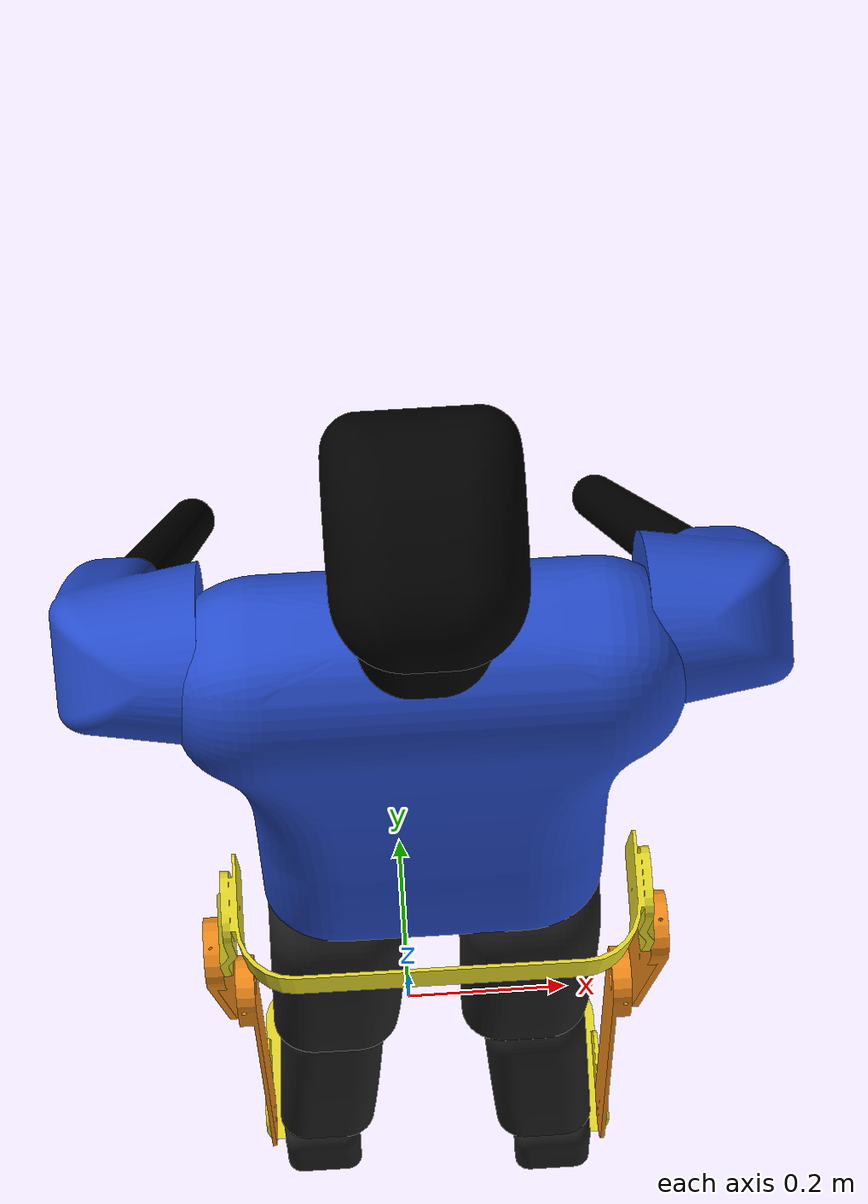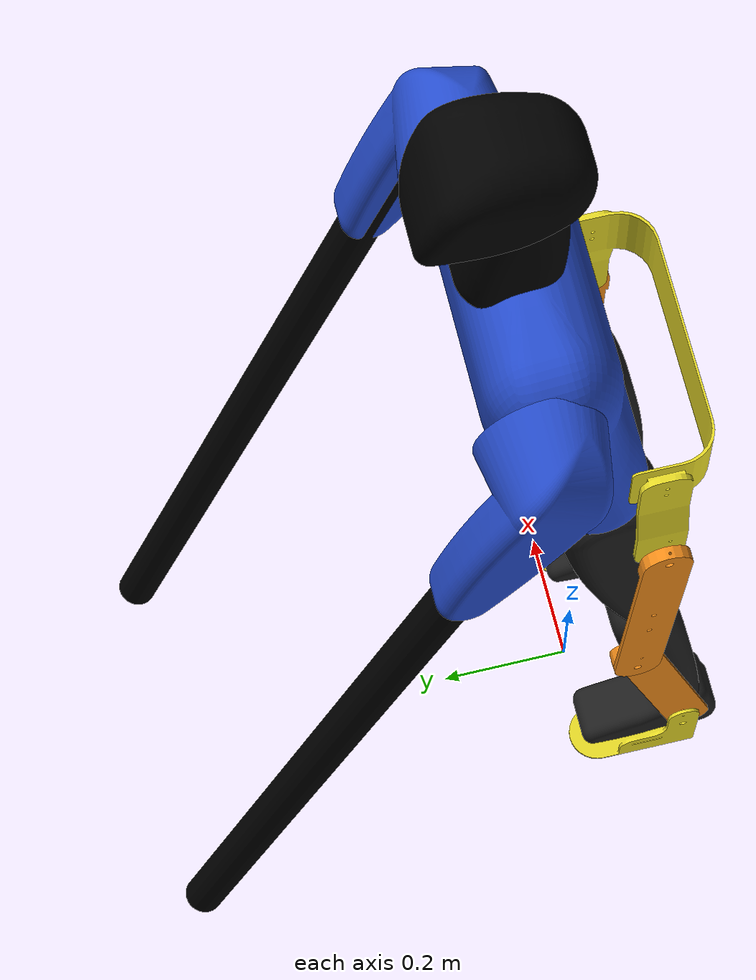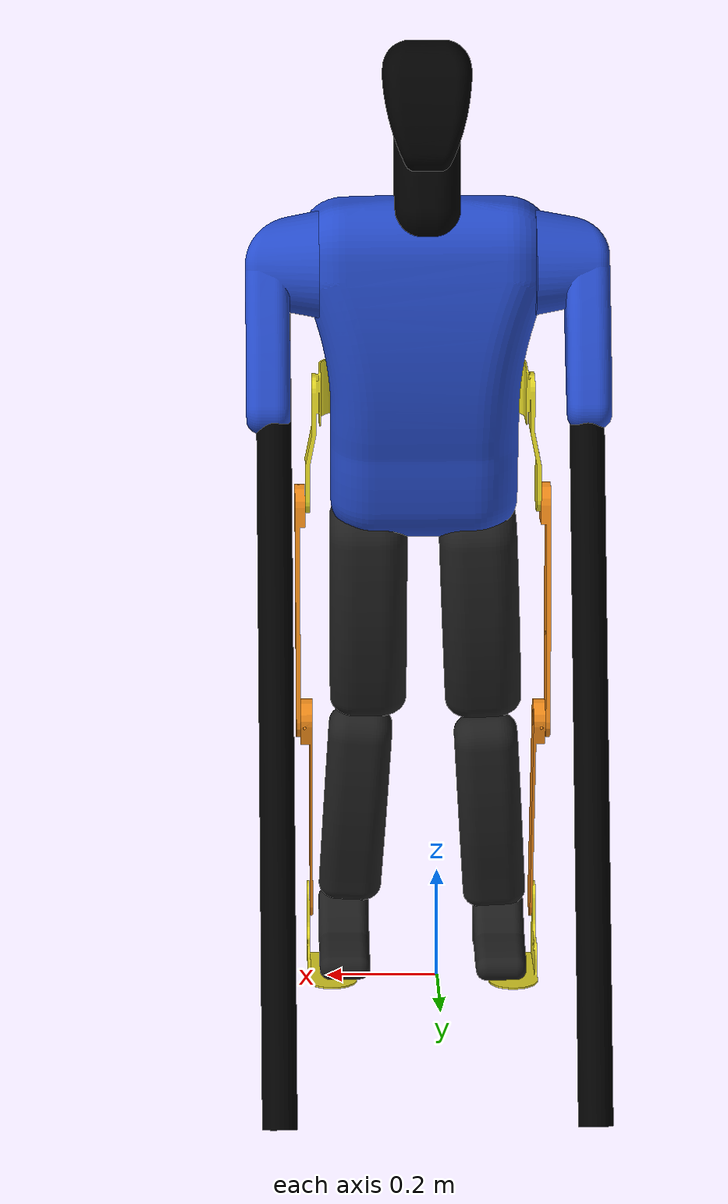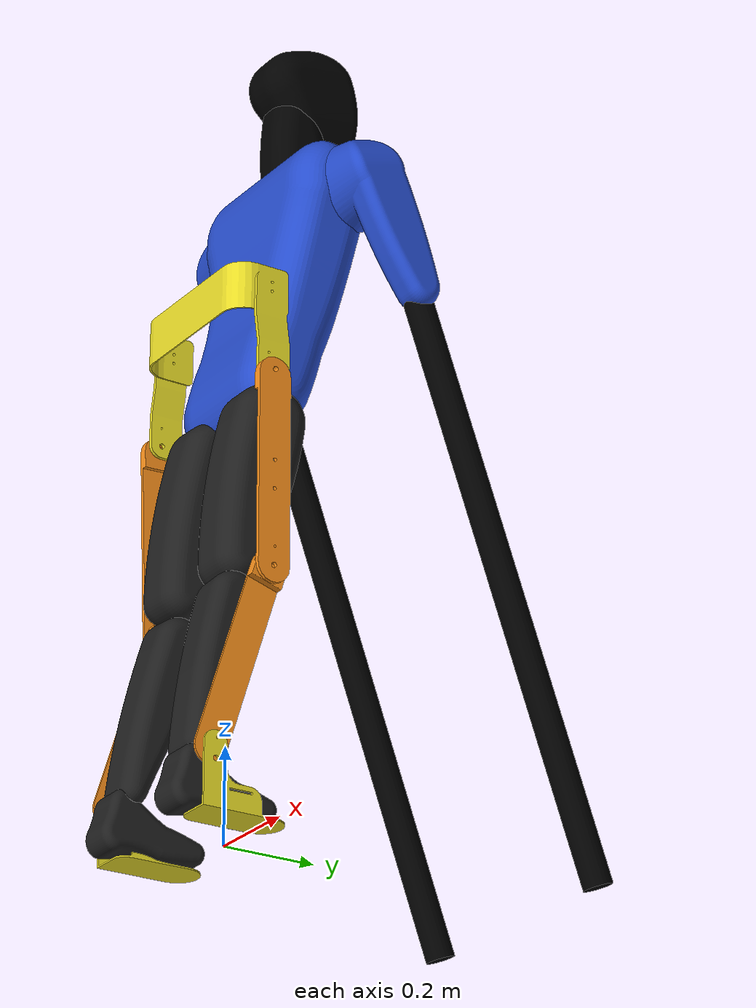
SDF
<?xml version='1.0'?>
<sdf version='1.7'>
  <model name='lle'>
    <link name='odom'>
      <inertial>
        <pose>0.02 0.5 0 0 -0 0</pose>
        <mass>58.0673</mass>
        <inertia>
          <ixx>3.12933</ixx>
          <ixy>0</ixy>
          <ixz>0</ixz>
          <iyy>2.77083</iyy>
          <iyz>0</iyz>
          <izz>0.858306</izz>
        </inertia>
      </inertial>
      <self_collide>0</self_collide>
      <enable_wind>0</enable_wind>
      <kinematic>0</kinematic>
      <pose>0 0 0 -0.01 0 0</pose>
      <gravity>1</gravity>
      <visual name='odom_fixed_joint_lump__human_head_visual_2'>
        <pose>0.1 0.1 1.22 1.4 0 3.1415</pose>
        <geometry>
          <mesh>
            <scale>0.0009 0.0009 0.0009</scale>
            <uri>/home/milad/catkin_ws/src/lle_human/lle_description/meshes/Head.STL</uri>
          </mesh>
        </geometry>
        <material>
          <shader type='pixel'>
            <normal_map>__default__</normal_map>
          </shader>
          <script>
            <name>ModelPreview_6::odom::odom_fixed_joint_lump__human_head_visual_2_MATERIAL_</name>
            <uri>__default__</uri>
          </script>
          <ambient>0 0 0 1</ambient>
          <diffuse>0 0 0 1</diffuse>
          <specular>0 0 0 1</specular>
          <emissive>0 0 0 1</emissive>
        </material>
        <transparency>0</transparency>
        <cast_shadows>1</cast_shadows>
      </visual>
      <visual name='odom_fixed_joint_lump__human_right_upper_arm_visual_6'>
        <pose>0.045 0.3 1.1 1.9 -0 0</pose>
        <geometry>
          <mesh>
            <scale>0.001 0.0009 0.00075</scale>
            <uri>/home/milad/catkin_ws/src/lle_human/lle_description/meshes/UpperArm.STL</uri>
          </mesh>
        </geometry>
        <material>
          <script>
            <name>Gazebo/Blue</name>
            <uri>file://media/materials/scripts/gazebo.material</uri>
          </script>
          <shader type='pixel'>
            <normal_map>__default__</normal_map>
          </shader>
          <ambient>0 0 1 1</ambient>
          <diffuse>0 0 1 1</diffuse>
          <specular>0.1 0.1 0.1 1</specular>
          <emissive>0 0 0 1</emissive>
        </material>
        <transparency>0</transparency>
        <cast_shadows>1</cast_shadows>
      </visual>
      <visual name='odom_fixed_joint_lump__human_neck_visual_1'>
        <pose>0.079 0.05 1.28 1.57 0 3.1415</pose>
        <geometry>
          <mesh>
            <scale>0.0009 0.0009 0.0009</scale>
            <uri>/home/milad/catkin_ws/src/lle_human/lle_description/meshes/neck.STL</uri>
          </mesh>
        </geometry>
        <material>
          <shader type='pixel'>
            <normal_map>__default__</normal_map>
          </shader>
          <script>
            <name>ModelPreview_6::odom::odom_fixed_joint_lump__human_neck_visual_1_MATERIAL_</name>
            <uri>__default__</uri>
          </script>
          <ambient>0 0 0 1</ambient>
          <diffuse>0 0 0 1</diffuse>
          <specular>0 0 0 1</specular>
          <emissive>0 0 0 1</emissive>
        </material>
        <transparency>0</transparency>
        <cast_shadows>1</cast_shadows>
      </visual>
      <visual name='odom_fixed_joint_lump__cane_right_visual_7'>
        <pose>0.29 0.42 0.62 0.35 -0 0</pose>
        <geometry>
          <cylinder>
            <length>1.4</length>
            <radius>0.03</radius>
          </cylinder>
        </geometry>
        <material>
          <shader type='pixel'>
            <normal_map>__default__</normal_map>
          </shader>
          <script>
            <name>ModelPreview_6::odom::odom_fixed_joint_lump__cane_right_visual_7_MATERIAL_</name>
            <uri>__default__</uri>
          </script>
          <ambient>0 0 0 1</ambient>
          <diffuse>0 0 0 1</diffuse>
          <specular>0 0 0 1</specular>
          <emissive>0 0 0 1</emissive>
        </material>
        <transparency>0</transparency>
        <cast_shadows>1</cast_shadows>
      </visual>
      <visual name='odom_fixed_joint_lump__human_chest_visual'>
        <pose>0.27 -0.08 0.845 1.7 -0 3.1415</pose>
        <geometry>
          <mesh>
            <scale>0.001 0.0009 0.00075</scale>
            <uri>/home/milad/catkin_ws/src/lle_human/lle_description/meshes/Chest.STL</uri>
          </mesh>
        </geometry>
        <material>
          <script>
            <name>Gazebo/Blue</name>
            <uri>file://media/materials/scripts/gazebo.material</uri>
          </script>
          <shader type='pixel'>
            <normal_map>__default__</normal_map>
          </shader>
          <ambient>0 0 1 1</ambient>
          <diffuse>0 0 1 1</diffuse>
          <specular>0.1 0.1 0.1 1</specular>
          <emissive>0 0 0 1</emissive>
        </material>
        <transparency>0</transparency>
        <cast_shadows>1</cast_shadows>
      </visual>
      <visual name='odom_fixed_joint_lump__cane_left_visual_5'>
        <pose>-0.25 0.42 0.62 0.35 -0 0</pose>
        <geometry>
          <cylinder>
            <length>1.4</length>
            <radius>0.03</radius>
          </cylinder>
        </geometry>
        <material>
          <shader type='pixel'>
            <normal_map>__default__</normal_map>
          </shader>
          <script>
            <name>ModelPreview_6::odom::odom_fixed_joint_lump__cane_left_visual_5_MATERIAL_</name>
            <uri>__default__</uri>
          </script>
          <ambient>0 0 0 1</ambient>
          <diffuse>0 0 0 1</diffuse>
          <specular>0 0 0 1</specular>
          <emissive>0 0 0 1</emissive>
        </material>
        <transparency>0</transparency>
        <cast_shadows>1</cast_shadows>
      </visual>
      <visual name='odom_fixed_joint_lump__human_left_upper_arm_visual_4'>
        <pose>0 0.22 1.064 1 -0 3.1415</pose>
        <geometry>
          <mesh>
            <scale>0.001 0.0009 0.00075</scale>
            <uri>/home/milad/catkin_ws/src/lle_human/lle_description/meshes/UpperArm.STL</uri>
          </mesh>
        </geometry>
        <material>
          <script>
            <name>Gazebo/Blue</name>
            <uri>file://media/materials/scripts/gazebo.material</uri>
          </script>
          <shader type='pixel'>
            <normal_map>__default__</normal_map>
          </shader>
          <ambient>0 0 1 1</ambient>
          <diffuse>0 0 1 1</diffuse>
          <specular>0.1 0.1 0.1 1</specular>
          <emissive>0 0 0 1</emissive>
        </material>
        <transparency>0</transparency>
        <cast_shadows>1</cast_shadows>
      </visual>
      <visual name='odom_fixed_joint_lump__base_link_visual_3'>
        <pose>0.193 -0.32 0.845 0 -0 3.14</pose>
        <geometry>
          <mesh>
            <scale>1 1 1</scale>
            <uri>/home/milad/catkin_ws/src/lle_human/lle_description/meshes/base_link.STL</uri>
          </mesh>
        </geometry>
        <material>
          <script>
            <name>Gazebo/Yellow</name>
            <uri>file://media/materials/scripts/gazebo.material</uri>
          </script>
          <shader type='pixel'>
            <normal_map>__default__</normal_map>
          </shader>
          <ambient>1 1 0 1</ambient>
          <diffuse>1 1 0 1</diffuse>
          <emissive>0 0 0 1</emissive>
        </material>
        <transparency>0</transparency>
        <cast_shadows>1</cast_shadows>
      </visual>
      <collision name='odom_fixed_joint_lump__human_head_collision_2'>
        <laser_retro>0</laser_retro>
        <max_contacts>10</max_contacts>
        <pose>0.1 0.1 1.22 1.4 0 3.1415</pose>
        <geometry>
          <mesh>
            <uri>/home/milad/catkin_ws/src/lle_human/lle_description/meshes/Head.STL</uri>
            <scale>0.0009 0.0009 0.0009</scale>
          </mesh>
        </geometry>
        <surface>
          <friction>
            <ode>
              <mu>1</mu>
              <mu2>1</mu2>
              <fdir1>0 0 0</fdir1>
              <slip1>0</slip1>
              <slip2>0</slip2>
            </ode>
            <torsional>
              <coefficient>1</coefficient>
              <patch_radius>0</patch_radius>
              <surface_radius>0</surface_radius>
              <use_patch_radius>1</use_patch_radius>
              <ode>
                <slip>0</slip>
              </ode>
            </torsional>
          </friction>
          <bounce>
            <restitution_coefficient>0</restitution_coefficient>
            <threshold>1e+06</threshold>
          </bounce>
          <contact>
            <collide_without_contact>0</collide_without_contact>
            <collide_without_contact_bitmask>1</collide_without_contact_bitmask>
            <collide_bitmask>1</collide_bitmask>
            <ode>
              <soft_cfm>0</soft_cfm>
              <soft_erp>0.2</soft_erp>
              <kp>1e+13</kp>
              <kd>1</kd>
              <max_vel>0.01</max_vel>
              <min_depth>0</min_depth>
            </ode>
            <bullet>
              <split_impulse>1</split_impulse>
              <split_impulse_penetration_threshold>-0.01</split_impulse_penetration_threshold>
              <soft_cfm>0</soft_cfm>
              <soft_erp>0.2</soft_erp>
              <kp>1e+13</kp>
              <kd>1</kd>
            </bullet>
          </contact>
        </surface>
      </collision>
      <collision name='odom_fixed_joint_lump__base_link_collision_3'>
        <laser_retro>0</laser_retro>
        <max_contacts>10</max_contacts>
        <pose>0.193 -0.26 0.845 0 -0 3.14</pose>
        <geometry>
          <mesh>
            <uri>/home/milad/catkin_ws/src/lle_human/lle_description/meshes/base_link.STL</uri>
            <scale>1 1 1</scale>
          </mesh>
        </geometry>
        <surface>
          <friction>
            <ode>
              <mu>0.9</mu>
              <mu2>0.9</mu2>
              <fdir1>0 0 0</fdir1>
              <slip1>0</slip1>
              <slip2>0</slip2>
            </ode>
            <torsional>
              <coefficient>1</coefficient>
              <patch_radius>0</patch_radius>
              <surface_radius>0</surface_radius>
              <use_patch_radius>1</use_patch_radius>
              <ode>
                <slip>0</slip>
              </ode>
            </torsional>
          </friction>
          <bounce>
            <restitution_coefficient>0</restitution_coefficient>
            <threshold>1e+06</threshold>
          </bounce>
          <contact>
            <collide_without_contact>0</collide_without_contact>
            <collide_without_contact_bitmask>1</collide_without_contact_bitmask>
            <collide_bitmask>1</collide_bitmask>
            <ode>
              <soft_cfm>0</soft_cfm>
              <soft_erp>0.2</soft_erp>
              <kp>6e+06</kp>
              <kd>1e+07</kd>
              <max_vel>0.01</max_vel>
              <min_depth>0</min_depth>
            </ode>
            <bullet>
              <split_impulse>1</split_impulse>
              <split_impulse_penetration_threshold>-0.01</split_impulse_penetration_threshold>
              <soft_cfm>0</soft_cfm>
              <soft_erp>0.2</soft_erp>
              <kp>6e+06</kp>
              <kd>1e+07</kd>
            </bullet>
          </contact>
        </surface>
      </collision>
      <collision name='odom_fixed_joint_lump__cane_right_collision_7'>
        <laser_retro>0</laser_retro>
        <max_contacts>10</max_contacts>
        <pose>0.29 0.42 0.62 0.35 -0 0</pose>
        <geometry>
          <cylinder>
            <radius>0.03</radius>
            <length>1.4</length>
          </cylinder>
        </geometry>
        <surface>
          <friction>
            <ode>
              <mu>1</mu>
              <mu2>1</mu2>
              <fdir1>0 0 0</fdir1>
              <slip1>0</slip1>
              <slip2>0</slip2>
            </ode>
            <torsional>
              <coefficient>1</coefficient>
              <patch_radius>0</patch_radius>
              <surface_radius>0</surface_radius>
              <use_patch_radius>1</use_patch_radius>
              <ode>
                <slip>0</slip>
              </ode>
            </torsional>
          </friction>
          <bounce>
            <restitution_coefficient>0</restitution_coefficient>
            <threshold>1e+06</threshold>
          </bounce>
          <contact>
            <collide_without_contact>0</collide_without_contact>
            <collide_without_contact_bitmask>1</collide_without_contact_bitmask>
            <collide_bitmask>1</collide_bitmask>
            <ode>
              <soft_cfm>0</soft_cfm>
              <soft_erp>0.2</soft_erp>
              <kp>1e+13</kp>
              <kd>1</kd>
              <max_vel>0.01</max_vel>
              <min_depth>0</min_depth>
            </ode>
            <bullet>
              <split_impulse>1</split_impulse>
              <split_impulse_penetration_threshold>-0.01</split_impulse_penetration_threshold>
              <soft_cfm>0</soft_cfm>
              <soft_erp>0.2</soft_erp>
              <kp>1e+13</kp>
              <kd>1</kd>
            </bullet>
          </contact>
        </surface>
      </collision>
      <collision name='odom_fixed_joint_lump__human_chest_collision'>
        <laser_retro>0</laser_retro>
        <max_contacts>10</max_contacts>
        <pose>0.27 -0.08 0.845 1.7 -0 3.1415</pose>
        <geometry>
          <mesh>
            <uri>/home/milad/catkin_ws/src/lle_human/lle_description/meshes/Chest.STL</uri>
            <scale>0.001 0.0009 0.00075</scale>
          </mesh>
        </geometry>
        <surface>
          <friction>
            <ode>
              <mu>0.9</mu>
              <mu2>0.9</mu2>
              <fdir1>0 0 0</fdir1>
              <slip1>0</slip1>
              <slip2>0</slip2>
            </ode>
            <torsional>
              <coefficient>1</coefficient>
              <patch_radius>0</patch_radius>
              <surface_radius>0</surface_radius>
              <use_patch_radius>1</use_patch_radius>
              <ode>
                <slip>0</slip>
              </ode>
            </torsional>
          </friction>
          <bounce>
            <restitution_coefficient>0</restitution_coefficient>
            <threshold>1e+06</threshold>
          </bounce>
          <contact>
            <collide_without_contact>0</collide_without_contact>
            <collide_without_contact_bitmask>1</collide_without_contact_bitmask>
            <collide_bitmask>1</collide_bitmask>
            <ode>
              <soft_cfm>0</soft_cfm>
              <soft_erp>0.2</soft_erp>
              <kp>6e+06</kp>
              <kd>1e+07</kd>
              <max_vel>0.01</max_vel>
              <min_depth>0</min_depth>
            </ode>
            <bullet>
              <split_impulse>1</split_impulse>
              <split_impulse_penetration_threshold>-0.01</split_impulse_penetration_threshold>
              <soft_cfm>0</soft_cfm>
              <soft_erp>0.2</soft_erp>
              <kp>6e+06</kp>
              <kd>1e+07</kd>
            </bullet>
          </contact>
        </surface>
      </collision>
      <collision name='odom_fixed_joint_lump__human_left_upper_arm_collision_4'>
        <laser_retro>0</laser_retro>
        <max_contacts>10</max_contacts>
        <pose>0 0.22 1.064 1 -0 3.1415</pose>
        <geometry>
          <mesh>
            <uri>/home/milad/catkin_ws/src/lle_human/lle_description/meshes/UpperArm.STL</uri>
            <scale>0.001 0.0009 0.00075</scale>
          </mesh>
        </geometry>
        <surface>
          <friction>
            <ode>
              <mu>0.9</mu>
              <mu2>0.9</mu2>
              <fdir1>0 0 0</fdir1>
              <slip1>0</slip1>
              <slip2>0</slip2>
            </ode>
            <torsional>
              <coefficient>1</coefficient>
              <patch_radius>0</patch_radius>
              <surface_radius>0</surface_radius>
              <use_patch_radius>1</use_patch_radius>
              <ode>
                <slip>0</slip>
              </ode>
            </torsional>
          </friction>
          <bounce>
            <restitution_coefficient>0</restitution_coefficient>
            <threshold>1e+06</threshold>
          </bounce>
          <contact>
            <collide_without_contact>0</collide_without_contact>
            <collide_without_contact_bitmask>1</collide_without_contact_bitmask>
            <collide_bitmask>1</collide_bitmask>
            <ode>
              <soft_cfm>0</soft_cfm>
              <soft_erp>0.2</soft_erp>
              <kp>6e+06</kp>
              <kd>1e+07</kd>
              <max_vel>0.01</max_vel>
              <min_depth>0</min_depth>
            </ode>
            <bullet>
              <split_impulse>1</split_impulse>
              <split_impulse_penetration_threshold>-0.01</split_impulse_penetration_threshold>
              <soft_cfm>0</soft_cfm>
              <soft_erp>0.2</soft_erp>
              <kp>6e+06</kp>
              <kd>1e+07</kd>
            </bullet>
          </contact>
        </surface>
      </collision>
      <collision name='odom_fixed_joint_lump__human_right_upper_arm_collision_6'>
        <laser_retro>0</laser_retro>
        <max_contacts>10</max_contacts>
        <pose>0.045 0.3 1.1 1.9 -0 0</pose>
        <geometry>
          <mesh>
            <uri>/home/milad/catkin_ws/src/lle_human/lle_description/meshes/UpperArm.STL</uri>
            <scale>0.001 0.0009 0.00075</scale>
          </mesh>
        </geometry>
        <surface>
          <friction>
            <ode>
              <mu>0.9</mu>
              <mu2>0.9</mu2>
              <fdir1>0 0 0</fdir1>
              <slip1>0</slip1>
              <slip2>0</slip2>
            </ode>
            <torsional>
              <coefficient>1</coefficient>
              <patch_radius>0</patch_radius>
              <surface_radius>0</surface_radius>
              <use_patch_radius>1</use_patch_radius>
              <ode>
                <slip>0</slip>
              </ode>
            </torsional>
          </friction>
          <bounce>
            <restitution_coefficient>0</restitution_coefficient>
            <threshold>1e+06</threshold>
          </bounce>
          <contact>
            <collide_without_contact>0</collide_without_contact>
            <collide_without_contact_bitmask>1</collide_without_contact_bitmask>
            <collide_bitmask>1</collide_bitmask>
            <ode>
              <soft_cfm>0</soft_cfm>
              <soft_erp>0.2</soft_erp>
              <kp>6e+06</kp>
              <kd>1e+07</kd>
              <max_vel>0.01</max_vel>
              <min_depth>0</min_depth>
            </ode>
            <bullet>
              <split_impulse>1</split_impulse>
              <split_impulse_penetration_threshold>-0.01</split_impulse_penetration_threshold>
              <soft_cfm>0</soft_cfm>
              <soft_erp>0.2</soft_erp>
              <kp>6e+06</kp>
              <kd>1e+07</kd>
            </bullet>
          </contact>
        </surface>
      </collision>
      <collision name='odom_fixed_joint_lump__cane_left_collision_5'>
        <laser_retro>0</laser_retro>
        <max_contacts>10</max_contacts>
        <pose>-0.25 0.42 0.62 0.35 -0 0</pose>
        <geometry>
          <cylinder>
            <radius>0.03</radius>
            <length>1.4</length>
          </cylinder>
        </geometry>
        <surface>
          <friction>
            <ode>
              <mu>1</mu>
              <mu2>1</mu2>
              <fdir1>0 0 0</fdir1>
              <slip1>0</slip1>
              <slip2>0</slip2>
            </ode>
            <torsional>
              <coefficient>1</coefficient>
              <patch_radius>0</patch_radius>
              <surface_radius>0</surface_radius>
              <use_patch_radius>1</use_patch_radius>
              <ode>
                <slip>0</slip>
              </ode>
            </torsional>
          </friction>
          <bounce>
            <restitution_coefficient>0</restitution_coefficient>
            <threshold>1e+06</threshold>
          </bounce>
          <contact>
            <collide_without_contact>0</collide_without_contact>
            <collide_without_contact_bitmask>1</collide_without_contact_bitmask>
            <collide_bitmask>1</collide_bitmask>
            <ode>
              <soft_cfm>0</soft_cfm>
              <soft_erp>0.2</soft_erp>
              <kp>1e+13</kp>
              <kd>1</kd>
              <max_vel>0.01</max_vel>
              <min_depth>0</min_depth>
            </ode>
            <bullet>
              <split_impulse>1</split_impulse>
              <split_impulse_penetration_threshold>-0.01</split_impulse_penetration_threshold>
              <soft_cfm>0</soft_cfm>
              <soft_erp>0.2</soft_erp>
              <kp>1e+13</kp>
              <kd>1</kd>
            </bullet>
          </contact>
        </surface>
      </collision>
      <collision name='odom_fixed_joint_lump__human_neck_collision_1'>
        <laser_retro>0</laser_retro>
        <max_contacts>10</max_contacts>
        <pose>0.079 0.05 1.28 1.57 0 3.1415</pose>
        <geometry>
          <mesh>
            <uri>/home/milad/catkin_ws/src/lle_human/lle_description/meshes/neck.STL</uri>
            <scale>0.0009 0.0009 0.0009</scale>
          </mesh>
        </geometry>
        <surface>
          <friction>
            <ode>
              <mu>1</mu>
              <mu2>1</mu2>
              <fdir1>0 0 0</fdir1>
              <slip1>0</slip1>
              <slip2>0</slip2>
            </ode>
            <torsional>
              <coefficient>1</coefficient>
              <patch_radius>0</patch_radius>
              <surface_radius>0</surface_radius>
              <use_patch_radius>1</use_patch_radius>
              <ode>
                <slip>0</slip>
              </ode>
            </torsional>
          </friction>
          <bounce>
            <restitution_coefficient>0</restitution_coefficient>
            <threshold>1e+06</threshold>
          </bounce>
          <contact>
            <collide_without_contact>0</collide_without_contact>
            <collide_without_contact_bitmask>1</collide_without_contact_bitmask>
            <collide_bitmask>1</collide_bitmask>
            <ode>
              <soft_cfm>0</soft_cfm>
              <soft_erp>0.2</soft_erp>
              <kp>1e+13</kp>
              <kd>1</kd>
              <max_vel>0.01</max_vel>
              <min_depth>0</min_depth>
            </ode>
            <bullet>
              <split_impulse>1</split_impulse>
              <split_impulse_penetration_threshold>-0.01</split_impulse_penetration_threshold>
              <soft_cfm>0</soft_cfm>
              <soft_erp>0.2</soft_erp>
              <kp>1e+13</kp>
              <kd>1</kd>
            </bullet>
          </contact>
        </surface>
      </collision>
    </link>
    <link name='left_femur'>
      <pose>-0.26 0 0.885 0 -0 0</pose>
      <inertial>
        <pose>0.05 0 0 0 -0 0</pose>
        <mass>7.62439</mass>
        <inertia>
          <ixx>0.156056</ixx>
          <ixy>6.428e-05</ixy>
          <ixz>0</ixz>
          <iyy>0.155944</iyy>
          <iyz>0</iyz>
          <izz>0.0401214</izz>
        </inertia>
      </inertial>
      <self_collide>0</self_collide>
      <enable_wind>0</enable_wind>
      <kinematic>0</kinematic>
      <gravity>1</gravity>
      <visual name='left_femur_visual'>
        <pose>0.494 -0.05 0 -0.001591 1.57079 -3.14159</pose>
        <geometry>
          <mesh>
            <scale>1 1 1</scale>
            <uri>/home/milad/catkin_ws/src/lle_human/lle_description/meshes/left_femur.STL</uri>
          </mesh>
        </geometry>
        <material>
          <script>
            <name>Gazebo/Orange</name>
            <uri>file://media/materials/scripts/gazebo.material</uri>
          </script>
          <shader type='pixel'>
            <normal_map>__default__</normal_map>
          </shader>
          <ambient>1 0.509 0.047 1</ambient>
          <diffuse>1 0.509 0.047 1</diffuse>
          <specular>0.5 0.5 0.5 1</specular>
          <emissive>0 0 0 1</emissive>
        </material>
        <transparency>0</transparency>
        <cast_shadows>1</cast_shadows>
      </visual>
      <visual name='left_femur_fixed_joint_lump__human_tight_left_visual_1'>
        <pose>0.07 0.05 -0.42 1.5 0.04 0</pose>
        <geometry>
          <mesh>
            <scale>0.0009 0.0007 0.00075</scale>
            <uri>/home/milad/catkin_ws/src/lle_human/lle_description/meshes/Thigh.STL</uri>
          </mesh>
        </geometry>
        <material>
          <script>
            <name>Gazebo/Black</name>
            <uri>file://media/materials/scripts/gazebo.material</uri>
          </script>
          <shader type='pixel'>
            <normal_map>__default__</normal_map>
          </shader>
          <ambient>0 0 0 1</ambient>
          <diffuse>0 0 0 1</diffuse>
          <specular>0.1 0.1 0.1 1</specular>
          <emissive>0 0 0 1</emissive>
        </material>
        <transparency>0</transparency>
        <cast_shadows>1</cast_shadows>
      </visual>
      <collision name='left_femur_fixed_joint_lump__human_tight_left_collision_1'>
        <laser_retro>0</laser_retro>
        <max_contacts>10</max_contacts>
        <pose>0.07 0.05 -0.42 1.5 0.04 0</pose>
        <geometry>
          <mesh>
            <uri>/home/milad/catkin_ws/src/lle_human/lle_description/meshes/Thigh.STL</uri>
            <scale>0.0009 0.0007 0.00075</scale>
          </mesh>
        </geometry>
        <surface>
          <friction>
            <ode>
              <mu>1</mu>
              <mu2>1</mu2>
              <fdir1>0 0 0</fdir1>
              <slip1>0</slip1>
              <slip2>0</slip2>
            </ode>
            <torsional>
              <coefficient>1</coefficient>
              <patch_radius>0</patch_radius>
              <surface_radius>0</surface_radius>
              <use_patch_radius>1</use_patch_radius>
              <ode>
                <slip>0</slip>
              </ode>
            </torsional>
          </friction>
          <bounce>
            <restitution_coefficient>0</restitution_coefficient>
            <threshold>1e+06</threshold>
          </bounce>
          <contact>
            <collide_without_contact>0</collide_without_contact>
            <collide_without_contact_bitmask>1</collide_without_contact_bitmask>
            <collide_bitmask>1</collide_bitmask>
            <ode>
              <soft_cfm>0</soft_cfm>
              <soft_erp>0.2</soft_erp>
              <kp>1e+13</kp>
              <kd>1</kd>
              <max_vel>0.01</max_vel>
              <min_depth>0</min_depth>
            </ode>
            <bullet>
              <split_impulse>1</split_impulse>
              <split_impulse_penetration_threshold>-0.01</split_impulse_penetration_threshold>
              <soft_cfm>0</soft_cfm>
              <soft_erp>0.2</soft_erp>
              <kp>1e+13</kp>
              <kd>1</kd>
            </bullet>
          </contact>
        </surface>
      </collision>
      <collision name='left_femur_collision'>
        <laser_retro>0</laser_retro>
        <max_contacts>10</max_contacts>
        <pose>0.494 -0.05 0 -0.001593 1.57079 3.14159</pose>
        <geometry>
          <mesh>
            <uri>/home/milad/catkin_ws/src/lle_human/lle_description/meshes/left_femur.STL</uri>
            <scale>1 1 1</scale>
          </mesh>
        </geometry>
        <surface>
          <friction>
            <ode>
              <mu>0.9</mu>
              <mu2>0.9</mu2>
              <fdir1>0 0 0</fdir1>
              <slip1>0</slip1>
              <slip2>0</slip2>
            </ode>
            <torsional>
              <coefficient>1</coefficient>
              <patch_radius>0</patch_radius>
              <surface_radius>0</surface_radius>
              <use_patch_radius>1</use_patch_radius>
              <ode>
                <slip>0</slip>
              </ode>
            </torsional>
          </friction>
          <bounce>
            <restitution_coefficient>0</restitution_coefficient>
            <threshold>1e+06</threshold>
          </bounce>
          <contact>
            <collide_without_contact>0</collide_without_contact>
            <collide_without_contact_bitmask>1</collide_without_contact_bitmask>
            <collide_bitmask>1</collide_bitmask>
            <ode>
              <soft_cfm>0</soft_cfm>
              <soft_erp>0.2</soft_erp>
              <kp>6e+06</kp>
              <kd>1e+07</kd>
              <max_vel>0.01</max_vel>
              <min_depth>0</min_depth>
            </ode>
            <bullet>
              <split_impulse>1</split_impulse>
              <split_impulse_penetration_threshold>-0.01</split_impulse_penetration_threshold>
              <soft_cfm>0</soft_cfm>
              <soft_erp>0.2</soft_erp>
              <kp>6e+06</kp>
              <kd>1e+07</kd>
            </bullet>
          </contact>
        </surface>
      </collision>
    </link>
    <link name='left_foot'>
      <pose>-0.185 0.015 0.073 0 -0 0</pose>
      <inertial>
        <pose>0 0 0 0 -0 0</pose>
        <mass>1.18504</mass>
        <inertia>
          <ixx>0.00409867</ixx>
          <ixy>0</ixy>
          <ixz>5.773e-05</ixz>
          <iyy>0.00199778</iyy>
          <iyz>6.441e-05</iyz>
          <izz>0.00584294</izz>
        </inertia>
      </inertial>
      <sensor name='left_foot_contact_sensor' type='contact'>
        <always_on>1</always_on>
        <update_rate>120</update_rate>
        <contact>
          <collision>left_foot_collision</collision>
          <topic>__default_topic__</topic>
        </contact>
        <plugin name='gazebo_ros_bumper_controller' filename='libgazebo_ros_bumper.so'>
          <bumperTopicName>/left_foot_contact_sensor_state</bumperTopicName>
          <frameName>left_foot</frameName>
          <robotNamespace>/</robotNamespace>
        </plugin>
      </sensor>
      <self_collide>0</self_collide>
      <enable_wind>0</enable_wind>
      <kinematic>0</kinematic>
      <gravity>1</gravity>
      <visual name='left_foot_fixed_joint_lump__human_foot_left_visual_1'>
        <pose>0.17 -0.23 -0.092 1.57 0 3.1415</pose>
        <geometry>
          <mesh>
            <scale>0.0009 0.0009 0.00075</scale>
            <uri>/home/milad/catkin_ws/src/lle_human/lle_description/meshes/Foot.STL</uri>
          </mesh>
        </geometry>
        <material>
          <script>
            <name>Gazebo/Black</name>
            <uri>file://media/materials/scripts/gazebo.material</uri>
          </script>
          <shader type='pixel'>
            <normal_map>__default__</normal_map>
          </shader>
          <ambient>0 0 0 1</ambient>
          <diffuse>0 0 0 1</diffuse>
          <specular>0.1 0.1 0.1 1</specular>
          <emissive>0 0 0 1</emissive>
        </material>
        <transparency>0</transparency>
        <cast_shadows>1</cast_shadows>
      </visual>
      <visual name='left_foot_visual'>
        <pose>0 -0.16 0 1.57 -0 1.57</pose>
        <geometry>
          <mesh>
            <scale>1 1 1</scale>
            <uri>/home/milad/catkin_ws/src/lle_human/lle_description/meshes/left_foot.STL</uri>
          </mesh>
        </geometry>
        <material>
          <script>
            <name>Gazebo/Yellow</name>
            <uri>file://media/materials/scripts/gazebo.material</uri>
          </script>
          <shader type='pixel'>
            <normal_map>__default__</normal_map>
          </shader>
          <ambient>1 1 0 1</ambient>
          <diffuse>1 1 0 1</diffuse>
          <emissive>0 0 0 1</emissive>
        </material>
        <transparency>0</transparency>
        <cast_shadows>1</cast_shadows>
      </visual>
      <collision name='left_foot_collision'>
        <laser_retro>0</laser_retro>
        <max_contacts>10</max_contacts>
        <pose>0 -0.16 0 1.57 -0 1.57</pose>
        <geometry>
          <mesh>
            <uri>/home/milad/catkin_ws/src/lle_human/lle_description/meshes/left_foot.STL</uri>
            <scale>1 1 1</scale>
          </mesh>
        </geometry>
        <surface>
          <friction>
            <ode>
              <mu>0.9</mu>
              <mu2>0.9</mu2>
              <fdir1>0 0 0</fdir1>
              <slip1>0</slip1>
              <slip2>0</slip2>
            </ode>
            <torsional>
              <coefficient>1</coefficient>
              <patch_radius>0</patch_radius>
              <surface_radius>0</surface_radius>
              <use_patch_radius>1</use_patch_radius>
              <ode>
                <slip>0</slip>
              </ode>
            </torsional>
          </friction>
          <bounce>
            <restitution_coefficient>0</restitution_coefficient>
            <threshold>1e+06</threshold>
          </bounce>
          <contact>
            <collide_without_contact>0</collide_without_contact>
            <collide_without_contact_bitmask>1</collide_without_contact_bitmask>
            <collide_bitmask>1</collide_bitmask>
            <ode>
              <soft_cfm>0</soft_cfm>
              <soft_erp>0.2</soft_erp>
              <kp>6e+06</kp>
              <kd>1e+07</kd>
              <max_vel>0.01</max_vel>
              <min_depth>0</min_depth>
            </ode>
            <bullet>
              <split_impulse>1</split_impulse>
              <split_impulse_penetration_threshold>-0.01</split_impulse_penetration_threshold>
              <soft_cfm>0</soft_cfm>
              <soft_erp>0.2</soft_erp>
              <kp>6e+06</kp>
              <kd>1e+07</kd>
            </bullet>
          </contact>
        </surface>
      </collision>
      <collision name='left_foot_fixed_joint_lump__human_foot_left_collision_1'>
        <laser_retro>0</laser_retro>
        <max_contacts>10</max_contacts>
        <pose>0.17 -0.23 -0.092 1.57 0 3.1415</pose>
        <geometry>
          <mesh>
            <uri>/home/milad/catkin_ws/src/lle_human/lle_description/meshes/Foot.STL</uri>
            <scale>0.0009 0.0009 0.00075</scale>
          </mesh>
        </geometry>
        <surface>
          <friction>
            <ode>
              <mu>1</mu>
              <mu2>1</mu2>
              <fdir1>0 0 0</fdir1>
              <slip1>0</slip1>
              <slip2>0</slip2>
            </ode>
            <torsional>
              <coefficient>1</coefficient>
              <patch_radius>0</patch_radius>
              <surface_radius>0</surface_radius>
              <use_patch_radius>1</use_patch_radius>
              <ode>
                <slip>0</slip>
              </ode>
            </torsional>
          </friction>
          <bounce>
            <restitution_coefficient>0</restitution_coefficient>
            <threshold>1e+06</threshold>
          </bounce>
          <contact>
            <collide_without_contact>0</collide_without_contact>
            <collide_without_contact_bitmask>1</collide_without_contact_bitmask>
            <collide_bitmask>1</collide_bitmask>
            <ode>
              <soft_cfm>0</soft_cfm>
              <soft_erp>0.2</soft_erp>
              <kp>1e+13</kp>
              <kd>1</kd>
              <max_vel>0.01</max_vel>
              <min_depth>0</min_depth>
            </ode>
            <bullet>
              <split_impulse>1</split_impulse>
              <split_impulse_penetration_threshold>-0.01</split_impulse_penetration_threshold>
              <soft_cfm>0</soft_cfm>
              <soft_erp>0.2</soft_erp>
              <kp>1e+13</kp>
              <kd>1</kd>
            </bullet>
          </contact>
        </surface>
      </collision>
    </link>
    <link name='left_leg'>
      <pose>-0.185 0.015 0.476 0 -0 0</pose>
      <inertial>
        <pose>0 0 0 0 -0 0</pose>
        <mass>3.66625</mass>
        <inertia>
          <ixx>0.0500098</ixx>
          <ixy>6e-08</ixy>
          <ixz>0</ixz>
          <iyy>0.0478362</iyy>
          <iyz>0</iyz>
          <izz>0.00748695</izz>
        </inertia>
      </inertial>
      <self_collide>0</self_collide>
      <enable_wind>0</enable_wind>
      <kinematic>0</kinematic>
      <gravity>1</gravity>
      <visual name='left_leg_fixed_joint_lump__human_calf_left_visual_1'>
        <pose>-0.03 -0.15 -0.4 1.2 0.06 0</pose>
        <geometry>
          <mesh>
            <scale>0.0009 0.0008 0.00075</scale>
            <uri>/home/milad/catkin_ws/src/lle_human/lle_description/meshes/Calf.STL</uri>
          </mesh>
        </geometry>
        <material>
          <script>
            <name>Gazebo/Black</name>
            <uri>file://media/materials/scripts/gazebo.material</uri>
          </script>
          <shader type='pixel'>
            <normal_map>__default__</normal_map>
          </shader>
          <ambient>0 0 0 1</ambient>
          <diffuse>0 0 0 1</diffuse>
          <specular>0.1 0.1 0.1 1</specular>
          <emissive>0 0 0 1</emissive>
        </material>
        <transparency>0</transparency>
        <cast_shadows>1</cast_shadows>
      </visual>
      <visual name='left_leg_visual'>
        <pose>0 -0.05 0 1.57 -0.3 -1.57</pose>
        <geometry>
          <mesh>
            <scale>1 1 1</scale>
            <uri>/home/milad/catkin_ws/src/lle_human/lle_description/meshes/left_leg.STL</uri>
          </mesh>
        </geometry>
        <material>
          <script>
            <name>Gazebo/Orange</name>
            <uri>file://media/materials/scripts/gazebo.material</uri>
          </script>
          <shader type='pixel'>
            <normal_map>__default__</normal_map>
          </shader>
          <ambient>1 0.509 0.047 1</ambient>
          <diffuse>1 0.509 0.047 1</diffuse>
          <specular>0.5 0.5 0.5 1</specular>
          <emissive>0 0 0 1</emissive>
        </material>
        <transparency>0</transparency>
        <cast_shadows>1</cast_shadows>
      </visual>
      <collision name='left_leg_collision'>
        <laser_retro>0</laser_retro>
        <max_contacts>10</max_contacts>
        <pose>0 -0.05 0 1.57 -0.3 -1.57</pose>
        <geometry>
          <mesh>
            <uri>/home/milad/catkin_ws/src/lle_human/lle_description/meshes/left_leg.STL</uri>
            <scale>1 1 1</scale>
          </mesh>
        </geometry>
        <surface>
          <friction>
            <ode>
              <mu>0.9</mu>
              <mu2>0.9</mu2>
              <fdir1>0 0 0</fdir1>
              <slip1>0</slip1>
              <slip2>0</slip2>
            </ode>
            <torsional>
              <coefficient>1</coefficient>
              <patch_radius>0</patch_radius>
              <surface_radius>0</surface_radius>
              <use_patch_radius>1</use_patch_radius>
              <ode>
                <slip>0</slip>
              </ode>
            </torsional>
          </friction>
          <bounce>
            <restitution_coefficient>0</restitution_coefficient>
            <threshold>1e+06</threshold>
          </bounce>
          <contact>
            <collide_without_contact>0</collide_without_contact>
            <collide_without_contact_bitmask>1</collide_without_contact_bitmask>
            <collide_bitmask>1</collide_bitmask>
            <ode>
              <soft_cfm>0</soft_cfm>
              <soft_erp>0.2</soft_erp>
              <kp>6e+06</kp>
              <kd>1e+07</kd>
              <max_vel>0.01</max_vel>
              <min_depth>0</min_depth>
            </ode>
            <bullet>
              <split_impulse>1</split_impulse>
              <split_impulse_penetration_threshold>-0.01</split_impulse_penetration_threshold>
              <soft_cfm>0</soft_cfm>
              <soft_erp>0.2</soft_erp>
              <kp>6e+06</kp>
              <kd>1e+07</kd>
            </bullet>
          </contact>
        </surface>
      </collision>
      <collision name='left_leg_fixed_joint_lump__human_calf_left_collision_1'>
        <laser_retro>0</laser_retro>
        <max_contacts>10</max_contacts>
        <pose>-0.03 -0.15 -0.4 1.2 0.06 0</pose>
        <geometry>
          <mesh>
            <uri>/home/milad/catkin_ws/src/lle_human/lle_description/meshes/Calf.STL</uri>
            <scale>0.0009 0.0008 0.00075</scale>
          </mesh>
        </geometry>
        <surface>
          <friction>
            <ode>
              <mu>1</mu>
              <mu2>1</mu2>
              <fdir1>0 0 0</fdir1>
              <slip1>0</slip1>
              <slip2>0</slip2>
            </ode>
            <torsional>
              <coefficient>1</coefficient>
              <patch_radius>0</patch_radius>
              <surface_radius>0</surface_radius>
              <use_patch_radius>1</use_patch_radius>
              <ode>
                <slip>0</slip>
              </ode>
            </torsional>
          </friction>
          <bounce>
            <restitution_coefficient>0</restitution_coefficient>
            <threshold>1e+06</threshold>
          </bounce>
          <contact>
            <collide_without_contact>0</collide_without_contact>
            <collide_without_contact_bitmask>1</collide_without_contact_bitmask>
            <collide_bitmask>1</collide_bitmask>
            <ode>
              <soft_cfm>0</soft_cfm>
              <soft_erp>0.2</soft_erp>
              <kp>1e+13</kp>
              <kd>1</kd>
              <max_vel>0.01</max_vel>
              <min_depth>0</min_depth>
            </ode>
            <bullet>
              <split_impulse>1</split_impulse>
              <split_impulse_penetration_threshold>-0.01</split_impulse_penetration_threshold>
              <soft_cfm>0</soft_cfm>
              <soft_erp>0.2</soft_erp>
              <kp>1e+13</kp>
              <kd>1</kd>
            </bullet>
          </contact>
        </surface>
      </collision>
    </link>
    <link name='right_femur'>
      <pose>0.26 0 0.885 0 -0 0</pose>
      <inertial>
        <pose>0 0 0 0 -0 0</pose>
        <mass>7.62439</mass>
        <inertia>
          <ixx>0.156056</ixx>
          <ixy>6.428e-05</ixy>
          <ixz>0</ixz>
          <iyy>0.155944</iyy>
          <iyz>0</iyz>
          <izz>0.0401214</izz>
        </inertia>
      </inertial>
      <self_collide>0</self_collide>
      <enable_wind>0</enable_wind>
      <kinematic>0</kinematic>
      <gravity>1</gravity>
      <visual name='right_femur_visual'>
        <pose>-0.025 -0.05 0 -0.001591 1.57079 -3.14159</pose>
        <geometry>
          <mesh>
            <scale>1 1 1</scale>
            <uri>/home/milad/catkin_ws/src/lle_human/lle_description/meshes/right_femur.STL</uri>
          </mesh>
        </geometry>
        <material>
          <script>
            <name>Gazebo/Orange</name>
            <uri>file://media/materials/scripts/gazebo.material</uri>
          </script>
          <shader type='pixel'>
            <normal_map>__default__</normal_map>
          </shader>
          <ambient>1 0.509 0.047 1</ambient>
          <diffuse>1 0.509 0.047 1</diffuse>
          <specular>0.5 0.5 0.5 1</specular>
          <emissive>0 0 0 1</emissive>
        </material>
        <transparency>0</transparency>
        <cast_shadows>1</cast_shadows>
      </visual>
      <visual name='right_femur_fixed_joint_lump__human_tight_right_visual_1'>
        <pose>-0.24 0.05 -0.42 1.5 -0 0</pose>
        <geometry>
          <mesh>
            <scale>0.0009 0.0007 0.00075</scale>
            <uri>/home/milad/catkin_ws/src/lle_human/lle_description/meshes/Thigh.STL</uri>
          </mesh>
        </geometry>
        <material>
          <script>
            <name>Gazebo/Black</name>
            <uri>file://media/materials/scripts/gazebo.material</uri>
          </script>
          <shader type='pixel'>
            <normal_map>__default__</normal_map>
          </shader>
          <ambient>0 0 0 1</ambient>
          <diffuse>0 0 0 1</diffuse>
          <specular>0.1 0.1 0.1 1</specular>
          <emissive>0 0 0 1</emissive>
        </material>
        <transparency>0</transparency>
        <cast_shadows>1</cast_shadows>
      </visual>
      <collision name='right_femur_collision'>
        <laser_retro>0</laser_retro>
        <max_contacts>10</max_contacts>
        <pose>-0.025 -0.05 0 -0.001593 1.57079 3.14159</pose>
        <geometry>
          <mesh>
            <uri>/home/milad/catkin_ws/src/lle_human/lle_description/meshes/right_femur.STL</uri>
            <scale>1 1 1</scale>
          </mesh>
        </geometry>
        <surface>
          <friction>
            <ode>
              <mu>0.9</mu>
              <mu2>0.9</mu2>
              <fdir1>0 0 0</fdir1>
              <slip1>0</slip1>
              <slip2>0</slip2>
            </ode>
            <torsional>
              <coefficient>1</coefficient>
              <patch_radius>0</patch_radius>
              <surface_radius>0</surface_radius>
              <use_patch_radius>1</use_patch_radius>
              <ode>
                <slip>0</slip>
              </ode>
            </torsional>
          </friction>
          <bounce>
            <restitution_coefficient>0</restitution_coefficient>
            <threshold>1e+06</threshold>
          </bounce>
          <contact>
            <collide_without_contact>0</collide_without_contact>
            <collide_without_contact_bitmask>1</collide_without_contact_bitmask>
            <collide_bitmask>1</collide_bitmask>
            <ode>
              <soft_cfm>0</soft_cfm>
              <soft_erp>0.2</soft_erp>
              <kp>6e+06</kp>
              <kd>1e+07</kd>
              <max_vel>0.01</max_vel>
              <min_depth>0</min_depth>
            </ode>
            <bullet>
              <split_impulse>1</split_impulse>
              <split_impulse_penetration_threshold>-0.01</split_impulse_penetration_threshold>
              <soft_cfm>0</soft_cfm>
              <soft_erp>0.2</soft_erp>
              <kp>6e+06</kp>
              <kd>1e+07</kd>
            </bullet>
          </contact>
        </surface>
      </collision>
      <collision name='right_femur_fixed_joint_lump__human_tight_right_collision_1'>
        <laser_retro>0</laser_retro>
        <max_contacts>10</max_contacts>
        <pose>-0.24 0.05 -0.42 1.5 -0 0</pose>
        <geometry>
          <mesh>
            <uri>/home/milad/catkin_ws/src/lle_human/lle_description/meshes/Thigh.STL</uri>
            <scale>0.0009 0.0007 0.00075</scale>
          </mesh>
        </geometry>
        <surface>
          <friction>
            <ode>
              <mu>1</mu>
              <mu2>1</mu2>
              <fdir1>0 0 0</fdir1>
              <slip1>0</slip1>
              <slip2>0</slip2>
            </ode>
            <torsional>
              <coefficient>1</coefficient>
              <patch_radius>0</patch_radius>
              <surface_radius>0</surface_radius>
              <use_patch_radius>1</use_patch_radius>
              <ode>
                <slip>0</slip>
              </ode>
            </torsional>
          </friction>
          <bounce>
            <restitution_coefficient>0</restitution_coefficient>
            <threshold>1e+06</threshold>
          </bounce>
          <contact>
            <collide_without_contact>0</collide_without_contact>
            <collide_without_contact_bitmask>1</collide_without_contact_bitmask>
            <collide_bitmask>1</collide_bitmask>
            <ode>
              <soft_cfm>0</soft_cfm>
              <soft_erp>0.2</soft_erp>
              <kp>1e+13</kp>
              <kd>1</kd>
              <max_vel>0.01</max_vel>
              <min_depth>0</min_depth>
            </ode>
            <bullet>
              <split_impulse>1</split_impulse>
              <split_impulse_penetration_threshold>-0.01</split_impulse_penetration_threshold>
              <soft_cfm>0</soft_cfm>
              <soft_erp>0.2</soft_erp>
              <kp>1e+13</kp>
              <kd>1</kd>
            </bullet>
          </contact>
        </surface>
      </collision>
    </link>
    <link name='right_foot'>
      <pose>0.215 0 0.072 0 -0 0</pose>
      <inertial>
        <pose>0 0 0 0 -0 0</pose>
        <mass>1.18504</mass>
        <inertia>
          <ixx>0.00409867</ixx>
          <ixy>0</ixy>
          <ixz>5.773e-05</ixz>
          <iyy>0.00199778</iyy>
          <iyz>6.441e-05</iyz>
          <izz>0.00584294</izz>
        </inertia>
      </inertial>
      <sensor name='right_foot_contact_sensor' type='contact'>
        <always_on>1</always_on>
        <update_rate>120</update_rate>
        <contact>
          <collision>right_foot_collision</collision>
          <topic>__default_topic__</topic>
        </contact>
        <plugin name='gazebo_ros_bumper_controller_1' filename='libgazebo_ros_bumper.so'>
          <bumperTopicName>/right_foot_contact_sensor_state</bumperTopicName>
          <frameName>right_foot</frameName>
          <robotNamespace>/</robotNamespace>
        </plugin>
      </sensor>
      <self_collide>0</self_collide>
      <enable_wind>0</enable_wind>
      <kinematic>0</kinematic>
      <gravity>1</gravity>
      <visual name='right_foot_visual'>
        <pose>0.02 -0.16 0 1.57 0 -1.57</pose>
        <geometry>
          <mesh>
            <scale>1 1 1</scale>
            <uri>/home/milad/catkin_ws/src/lle_human/lle_description/meshes/right_foot.STL</uri>
          </mesh>
        </geometry>
        <material>
          <script>
            <name>Gazebo/Yellow</name>
            <uri>file://media/materials/scripts/gazebo.material</uri>
          </script>
          <shader type='pixel'>
            <normal_map>__default__</normal_map>
          </shader>
          <ambient>1 1 0 1</ambient>
          <diffuse>1 1 0 1</diffuse>
          <emissive>0 0 0 1</emissive>
        </material>
        <transparency>0</transparency>
        <cast_shadows>1</cast_shadows>
      </visual>
      <visual name='right_foot_fixed_joint_lump__human_foot_right_visual_1'>
        <pose>0.055 -0.23 -0.092 1.57 0 3.1415</pose>
        <geometry>
          <mesh>
            <scale>0.0009 0.0009 0.00075</scale>
            <uri>/home/milad/catkin_ws/src/lle_human/lle_description/meshes/Foot.STL</uri>
          </mesh>
        </geometry>
        <material>
          <script>
            <name>Gazebo/Black</name>
            <uri>file://media/materials/scripts/gazebo.material</uri>
          </script>
          <shader type='pixel'>
            <normal_map>__default__</normal_map>
          </shader>
          <ambient>0 0 0 1</ambient>
          <diffuse>0 0 0 1</diffuse>
          <specular>0.1 0.1 0.1 1</specular>
          <emissive>0 0 0 1</emissive>
        </material>
        <transparency>0</transparency>
        <cast_shadows>1</cast_shadows>
      </visual>
      <collision name='right_foot_fixed_joint_lump__human_foot_right_collision_1'>
        <laser_retro>0</laser_retro>
        <max_contacts>10</max_contacts>
        <pose>0.055 -0.23 -0.092 1.57 0 3.1415</pose>
        <geometry>
          <mesh>
            <uri>/home/milad/catkin_ws/src/lle_human/lle_description/meshes/Foot.STL</uri>
            <scale>0.0009 0.0009 0.00075</scale>
          </mesh>
        </geometry>
        <surface>
          <friction>
            <ode>
              <mu>1</mu>
              <mu2>1</mu2>
              <fdir1>0 0 0</fdir1>
              <slip1>0</slip1>
              <slip2>0</slip2>
            </ode>
            <torsional>
              <coefficient>1</coefficient>
              <patch_radius>0</patch_radius>
              <surface_radius>0</surface_radius>
              <use_patch_radius>1</use_patch_radius>
              <ode>
                <slip>0</slip>
              </ode>
            </torsional>
          </friction>
          <bounce>
            <restitution_coefficient>0</restitution_coefficient>
            <threshold>1e+06</threshold>
          </bounce>
          <contact>
            <collide_without_contact>0</collide_without_contact>
            <collide_without_contact_bitmask>1</collide_without_contact_bitmask>
            <collide_bitmask>1</collide_bitmask>
            <ode>
              <soft_cfm>0</soft_cfm>
              <soft_erp>0.2</soft_erp>
              <kp>1e+13</kp>
              <kd>1</kd>
              <max_vel>0.01</max_vel>
              <min_depth>0</min_depth>
            </ode>
            <bullet>
              <split_impulse>1</split_impulse>
              <split_impulse_penetration_threshold>-0.01</split_impulse_penetration_threshold>
              <soft_cfm>0</soft_cfm>
              <soft_erp>0.2</soft_erp>
              <kp>1e+13</kp>
              <kd>1</kd>
            </bullet>
          </contact>
        </surface>
      </collision>
      <collision name='right_foot_collision'>
        <laser_retro>0</laser_retro>
        <max_contacts>10</max_contacts>
        <pose>0.02 -0.16 0 1.57 0 -1.57</pose>
        <geometry>
          <mesh>
            <uri>/home/milad/catkin_ws/src/lle_human/lle_description/meshes/right_foot.STL</uri>
            <scale>1 1 1</scale>
          </mesh>
        </geometry>
        <surface>
          <friction>
            <ode>
              <mu>0.9</mu>
              <mu2>0.9</mu2>
              <fdir1>0 0 0</fdir1>
              <slip1>0</slip1>
              <slip2>0</slip2>
            </ode>
            <torsional>
              <coefficient>1</coefficient>
              <patch_radius>0</patch_radius>
              <surface_radius>0</surface_radius>
              <use_patch_radius>1</use_patch_radius>
              <ode>
                <slip>0</slip>
              </ode>
            </torsional>
          </friction>
          <bounce>
            <restitution_coefficient>0</restitution_coefficient>
            <threshold>1e+06</threshold>
          </bounce>
          <contact>
            <collide_without_contact>0</collide_without_contact>
            <collide_without_contact_bitmask>1</collide_without_contact_bitmask>
            <collide_bitmask>1</collide_bitmask>
            <ode>
              <soft_cfm>0</soft_cfm>
              <soft_erp>0.2</soft_erp>
              <kp>6e+06</kp>
              <kd>1e+07</kd>
              <max_vel>0.01</max_vel>
              <min_depth>0</min_depth>
            </ode>
            <bullet>
              <split_impulse>1</split_impulse>
              <split_impulse_penetration_threshold>-0.01</split_impulse_penetration_threshold>
              <soft_cfm>0</soft_cfm>
              <soft_erp>0.2</soft_erp>
              <kp>6e+06</kp>
              <kd>1e+07</kd>
            </bullet>
          </contact>
        </surface>
      </collision>
    </link>
    <link name='right_leg'>
      <pose>0.28 0 0.475 0 -0 0</pose>
      <inertial>
        <pose>0 0 0 0 -0 0</pose>
        <mass>3.66625</mass>
        <inertia>
          <ixx>0.0500098</ixx>
          <ixy>6e-08</ixy>
          <ixz>0</ixz>
          <iyy>0.0478362</iyy>
          <iyz>0</iyz>
          <izz>0.00748695</izz>
        </inertia>
      </inertial>
      <self_collide>0</self_collide>
      <enable_wind>0</enable_wind>
      <kinematic>0</kinematic>
      <gravity>1</gravity>
      <visual name='right_leg_fixed_joint_lump__human_calf_right_visual_1'>
        <pose>-0.225 -0.15 -0.4 1.2 -0.058 0</pose>
        <geometry>
          <mesh>
            <scale>0.0009 0.0008 0.00075</scale>
            <uri>/home/milad/catkin_ws/src/lle_human/lle_description/meshes/Calf.STL</uri>
          </mesh>
        </geometry>
        <material>
          <script>
            <name>Gazebo/Black</name>
            <uri>file://media/materials/scripts/gazebo.material</uri>
          </script>
          <shader type='pixel'>
            <normal_map>__default__</normal_map>
          </shader>
          <ambient>0 0 0 1</ambient>
          <diffuse>0 0 0 1</diffuse>
          <specular>0.1 0.1 0.1 1</specular>
          <emissive>0 0 0 1</emissive>
        </material>
        <transparency>0</transparency>
        <cast_shadows>1</cast_shadows>
      </visual>
      <visual name='right_leg_visual'>
        <pose>-0.045 -0.05 0 1.57 0.3 1.57</pose>
        <geometry>
          <mesh>
            <scale>1 1 1</scale>
            <uri>/home/milad/catkin_ws/src/lle_human/lle_description/meshes/right_leg.STL</uri>
          </mesh>
        </geometry>
        <material>
          <script>
            <name>Gazebo/Orange</name>
            <uri>file://media/materials/scripts/gazebo.material</uri>
          </script>
          <shader type='pixel'>
            <normal_map>__default__</normal_map>
          </shader>
          <ambient>1 0.509 0.047 1</ambient>
          <diffuse>1 0.509 0.047 1</diffuse>
          <specular>0.5 0.5 0.5 1</specular>
          <emissive>0 0 0 1</emissive>
        </material>
        <transparency>0</transparency>
        <cast_shadows>1</cast_shadows>
      </visual>
      <collision name='right_leg_fixed_joint_lump__human_calf_right_collision_1'>
        <laser_retro>0</laser_retro>
        <max_contacts>10</max_contacts>
        <pose>-0.225 -0.15 -0.4 1.2 -0.058 0</pose>
        <geometry>
          <mesh>
            <uri>/home/milad/catkin_ws/src/lle_human/lle_description/meshes/Calf.STL</uri>
            <scale>0.0009 0.0008 0.00075</scale>
          </mesh>
        </geometry>
        <surface>
          <friction>
            <ode>
              <mu>1</mu>
              <mu2>1</mu2>
              <fdir1>0 0 0</fdir1>
              <slip1>0</slip1>
              <slip2>0</slip2>
            </ode>
            <torsional>
              <coefficient>1</coefficient>
              <patch_radius>0</patch_radius>
              <surface_radius>0</surface_radius>
              <use_patch_radius>1</use_patch_radius>
              <ode>
                <slip>0</slip>
              </ode>
            </torsional>
          </friction>
          <bounce>
            <restitution_coefficient>0</restitution_coefficient>
            <threshold>1e+06</threshold>
          </bounce>
          <contact>
            <collide_without_contact>0</collide_without_contact>
            <collide_without_contact_bitmask>1</collide_without_contact_bitmask>
            <collide_bitmask>1</collide_bitmask>
            <ode>
              <soft_cfm>0</soft_cfm>
              <soft_erp>0.2</soft_erp>
              <kp>1e+13</kp>
              <kd>1</kd>
              <max_vel>0.01</max_vel>
              <min_depth>0</min_depth>
            </ode>
            <bullet>
              <split_impulse>1</split_impulse>
              <split_impulse_penetration_threshold>-0.01</split_impulse_penetration_threshold>
              <soft_cfm>0</soft_cfm>
              <soft_erp>0.2</soft_erp>
              <kp>1e+13</kp>
              <kd>1</kd>
            </bullet>
          </contact>
        </surface>
      </collision>
      <collision name='right_leg_collision'>
        <laser_retro>0</laser_retro>
        <max_contacts>10</max_contacts>
        <pose>-0.045 -0.05 0 1.57 0.3 1.57</pose>
        <geometry>
          <mesh>
            <uri>/home/milad/catkin_ws/src/lle_human/lle_description/meshes/right_leg.STL</uri>
            <scale>1 1 1</scale>
          </mesh>
        </geometry>
        <surface>
          <friction>
            <ode>
              <mu>0.9</mu>
              <mu2>0.9</mu2>
              <fdir1>0 0 0</fdir1>
              <slip1>0</slip1>
              <slip2>0</slip2>
            </ode>
            <torsional>
              <coefficient>1</coefficient>
              <patch_radius>0</patch_radius>
              <surface_radius>0</surface_radius>
              <use_patch_radius>1</use_patch_radius>
              <ode>
                <slip>0</slip>
              </ode>
            </torsional>
          </friction>
          <bounce>
            <restitution_coefficient>0</restitution_coefficient>
            <threshold>1e+06</threshold>
          </bounce>
          <contact>
            <collide_without_contact>0</collide_without_contact>
            <collide_without_contact_bitmask>1</collide_without_contact_bitmask>
            <collide_bitmask>1</collide_bitmask>
            <ode>
              <soft_cfm>0</soft_cfm>
              <soft_erp>0.2</soft_erp>
              <kp>6e+06</kp>
              <kd>1e+07</kd>
              <max_vel>0.01</max_vel>
              <min_depth>0</min_depth>
            </ode>
            <bullet>
              <split_impulse>1</split_impulse>
              <split_impulse_penetration_threshold>-0.01</split_impulse_penetration_threshold>
              <soft_cfm>0</soft_cfm>
              <soft_erp>0.2</soft_erp>
              <kp>6e+06</kp>
              <kd>1e+07</kd>
            </bullet>
          </contact>
        </surface>
      </collision>
    </link>
    <joint name='j_foot_l' type='revolute'>
      <parent>left_leg</parent>
      <child>left_foot</child>
      <pose>0 -0.17 0 0 -0 0</pose>
      <axis>
        <xyz>1 0 0</xyz>
        <limit>
          <lower>-0.5</lower>
          <upper>0.5</upper>
          <effort>10</effort>
          <velocity>0.5</velocity>
        </limit>
        <dynamics>
          <spring_reference>0</spring_reference>
          <spring_stiffness>0</spring_stiffness>
          <damping>0</damping>
          <friction>0</friction>
        </dynamics>
      </axis>
      <physics>
        <ode>
          <limit>
            <cfm>0</cfm>
            <erp>0.2</erp>
          </limit>
          <suspension>
            <cfm>0</cfm>
            <erp>0.2</erp>
          </suspension>
        </ode>
      </physics>
    </joint>
    <joint name='j_foot_r' type='revolute'>
      <parent>right_leg</parent>
      <child>right_foot</child>
      <pose>0 -0.17 0 0 -0 0</pose>
      <axis>
        <xyz>1 0 0</xyz>
        <limit>
          <lower>-0.5</lower>
          <upper>0.5</upper>
          <effort>10</effort>
          <velocity>0.5</velocity>
        </limit>
        <dynamics>
          <spring_reference>0</spring_reference>
          <spring_stiffness>0</spring_stiffness>
          <damping>0</damping>
          <friction>0</friction>
        </dynamics>
      </axis>
      <physics>
        <ode>
          <limit>
            <cfm>0</cfm>
            <erp>0.2</erp>
          </limit>
          <suspension>
            <cfm>0</cfm>
            <erp>0.2</erp>
          </suspension>
        </ode>
      </physics>
    </joint>
    <joint name='j_hip_l' type='revolute'>
      <parent>odom</parent>
      <child>left_femur</child>
      <pose>0.05 -0.05 0 0 -0 0</pose>
      <axis>
        <xyz>1 0 0</xyz>
        <limit>
          <lower>-1</lower>
          <upper>1</upper>
          <effort>50</effort>
          <velocity>0.5</velocity>
        </limit>
        <dynamics>
          <spring_reference>0</spring_reference>
          <spring_stiffness>0</spring_stiffness>
          <damping>0</damping>
          <friction>0</friction>
        </dynamics>
      </axis>
      <physics>
        <ode>
          <limit>
            <cfm>0</cfm>
            <erp>0.2</erp>
          </limit>
          <suspension>
            <cfm>0</cfm>
            <erp>0.2</erp>
          </suspension>
        </ode>
      </physics>
    </joint>
    <joint name='j_hip_r' type='revolute'>
      <parent>odom</parent>
      <child>right_femur</child>
      <pose>0 -0.05 0 0 -0 0</pose>
      <axis>
        <xyz>1 0 0</xyz>
        <limit>
          <lower>-1</lower>
          <upper>1</upper>
          <effort>50</effort>
          <velocity>0.5</velocity>
        </limit>
        <dynamics>
          <spring_reference>0</spring_reference>
          <spring_stiffness>0</spring_stiffness>
          <damping>0</damping>
          <friction>0</friction>
        </dynamics>
      </axis>
      <physics>
        <ode>
          <limit>
            <cfm>0</cfm>
            <erp>0.2</erp>
          </limit>
          <suspension>
            <cfm>0</cfm>
            <erp>0.2</erp>
          </suspension>
        </ode>
      </physics>
    </joint>
    <joint name='j_knee_l' type='revolute'>
      <parent>left_femur</parent>
      <child>left_leg</child>
      <pose>0 -0.05 0 0 -0 0</pose>
      <axis>
        <xyz>1 0 0</xyz>
        <limit>
          <lower>-1</lower>
          <upper>1</upper>
          <effort>100</effort>
          <velocity>0.5</velocity>
        </limit>
        <dynamics>
          <spring_reference>0</spring_reference>
          <spring_stiffness>0</spring_stiffness>
          <damping>0</damping>
          <friction>0</friction>
        </dynamics>
      </axis>
      <physics>
        <ode>
          <limit>
            <cfm>0</cfm>
            <erp>0.2</erp>
          </limit>
          <suspension>
            <cfm>0</cfm>
            <erp>0.2</erp>
          </suspension>
        </ode>
      </physics>
    </joint>
    <joint name='j_knee_r' type='revolute'>
      <parent>right_femur</parent>
      <child>right_leg</child>
      <pose>0 -0.05 0 0 -0 0</pose>
      <axis>
        <xyz>1 0 0</xyz>
        <limit>
          <lower>-1</lower>
          <upper>1</upper>
          <effort>100</effort>
          <velocity>0.5</velocity>
        </limit>
        <dynamics>
          <spring_reference>0</spring_reference>
          <spring_stiffness>0</spring_stiffness>
          <damping>0</damping>
          <friction>0</friction>
        </dynamics>
      </axis>
      <physics>
        <ode>
          <limit>
            <cfm>0</cfm>
            <erp>0.2</erp>
          </limit>
          <suspension>
            <cfm>0</cfm>
            <erp>0.2</erp>
          </suspension>
        </ode>
      </physics>
    </joint>
    <static>0</static>
    <allow_auto_disable>1</allow_auto_disable>
    <plugin name='ft_sensor' filename='libgazebo_ros_ft_sensor.so'>
      <updateRate>100.0</updateRate>
      <topicName>j_foot_r_sensor_topic</topicName>
      <jointName>j_foot_r</jointName>
      <robotNamespace>/</robotNamespace>
    </plugin>
    <plugin name='gazebo_ros_control' filename='libgazebo_ros_control.so'>
      <robotNamespace>lle</robotNamespace>
      <robotSimType>gazebo_ros_control/DefaultRobotHWSim</robotSimType>
    </plugin>
  </model>
</sdf>
